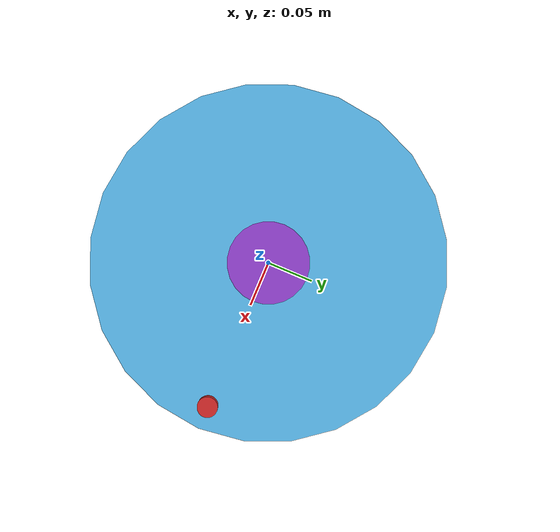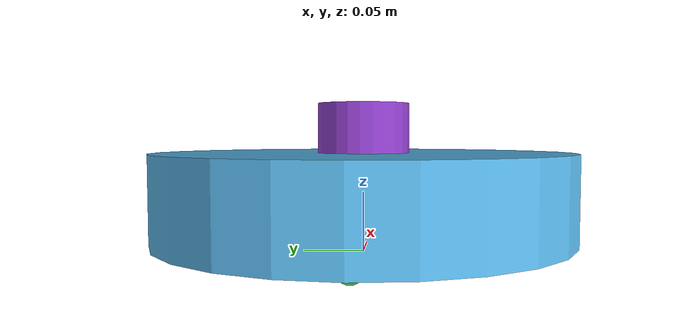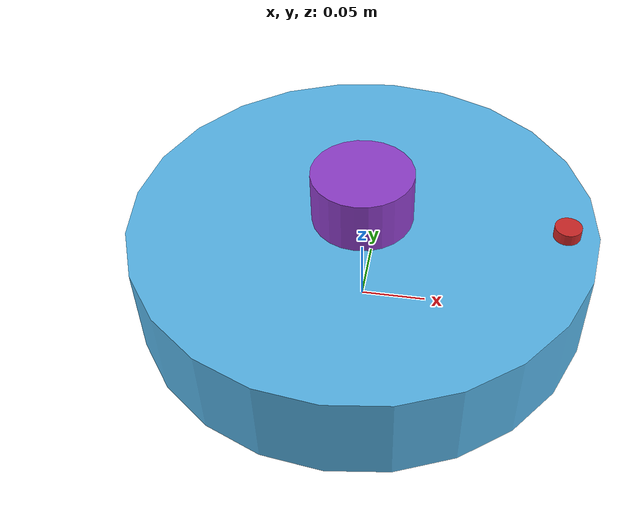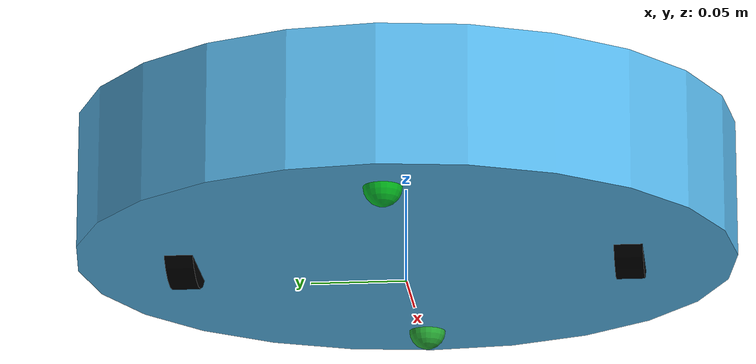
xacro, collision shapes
<?xml version="1.0"?>
<!-- iRobot Roomba 650 model -->
<robot name="roomba" xmlns:xacro="http://www.ros.org/wiki/xacro">

<!-- Robot form parameters -->
  <xacro:property name="PI" value="3.141592"/>
  <xacro:property name="wheels_offset" value="0.235"/>
  <xacro:property name="wheels_xgap" value="0.0"/>
  <xacro:property name="wheels_radius" value="0.036"/>
  <xacro:property name="wheels_width" value="0.015"/>
  <xacro:property name="wheels_mass" value="0.7"/>
  <xacro:property name="wheels_effort" value="1"/>
  <xacro:property name="wheels_velocity" value="1"/>
  <xacro:property name="wheels_damping" value="0.1"/>
  <xacro:property name="base_zgap" value="0.01"/>
  <xacro:property name="base_height" value="${0.083-base_zgap}"/>
  <xacro:property name="base_radius" value="0.174"/>
  <xacro:property name="base_mass" value="3.0"/>
  <xacro:property name="roller_radius" value="${base_zgap*1.0}"/>
  <xacro:property name="roller_xgap" value="0.135"/>
  <xacro:property name="ir_height" value="0.009"/>
  <xacro:property name="ir_radius" value="0.01"/>
  <xacro:property name="ir_mass" value="0.01"/>
  <xacro:property name="ir_xgap" value="0.15"/>
  <xacro:property name="lidar_radius" value="0.038"/>
  <xacro:property name="lidar_height" value="0.041"/>
  <xacro:property name="lidar_offset_y" value="0.0"/>
  <xacro:property name="local_costmap_offset_x" value="2.0"/>
  <xacro:property name="local_costmap_offset_y" value="0.0"/>

  <!-- Macro definition for the inertial property of cylinders -->
  <xacro:macro name="cylinder_inertial" params="radius length mass">
    <inertial>
      <origin xyz="0 0 0" rpy="0 0 0"/>
      <mass value="${mass}"/>
      <inertia ixx="${mass*radius*radius/2}" ixy="0.0" ixz="0.0"
               iyy="${mass*radius*radius/4+mass*length*length/12}" iyz="0.0"
               izz="${mass*radius*radius/4+mass*length*length/12}"/>
    </inertial>
  </xacro:macro>

  <!-- Include materials and gazebo extensions for compatibility -->
  <xacro:include filename="$(find robotics)/urdf/create2.gazebo" />
  <xacro:include filename="$(find robotics)/urdf/materials.xacro" />

  <!-- Definition of the main chassis projection at z=0 (for amcl and navigation purposes) -->
  <link name="base_footprint">
    <inertial>
      <origin xyz="0 0 0" rpy="0 0 0"/>
      <mass value="0.01"/>
      <inertia ixx="0.0001" ixy="0.0" ixz="0.0"
               iyy="0.0001" iyz="0.0" izz="0.0001"/>
    </inertial>
    <visual>
      <origin xyz="0 0 0" rpy="0 0 0"/>
      <!-- Import mesh for robot -->
      <geometry>
        <mesh filename="package://robotics/meshes/base_create2.dae" />
      </geometry>
    </visual>
    <collision>
      <origin xyz="0 0 0.05" rpy="0 0 0"/>
      <geometry>
        <box size="0.001 0.001 0.001" />
      </geometry>
    </collision>
  </link>

  <joint name="base_footprint_joint" type="fixed">
    <origin xyz="0 0 ${(base_height/2+base_zgap)}" rpy="0 0 0"/>
    <parent link="base_footprint"/>
    <child link="base_link"/>
  </joint>

  <!-- Definition of the main (base) link of the robot -->
  <link name="base_link">
    <xacro:cylinder_inertial
      radius="${base_radius}" length="${base_height}" mass="${base_mass}"/>
    <collision>
      <origin xyz="0 0 0" rpy="0 0 0"/>
      <geometry>
        <cylinder radius="${base_radius}" length="${base_height}"/>
      </geometry>
    </collision>
  </link>

  <!-- Lidar joint -->
  <joint name="lidar_joint" type="fixed">
    <origin xyz="0 ${lidar_offset_y} ${base_height/2+lidar_height/2}"
            rpy="0 0 0"/>
    <parent link="base_link"/>
    <child link="lidar"/>
  </joint>

  <!-- Lidar link -->
  <link name="lidar">
    <inertial>
      <origin xyz="0 0 0" rpy="0 0 0"/>
      <mass value="0.01"/>
      <inertia ixx="0.0001" ixy="0.0" ixz="0.0"
               iyy="0.0001" iyz="0.0" izz="0.0001"/>
    </inertial>
    <visual>
      <origin xyz="0 0 ${-lidar_height/2}" rpy="0 0 0"/>
      <geometry>
        <!-- Import lidar mesh -->
        <mesh filename="package://robotics/meshes/rplidar_a3m1.dae" />
      </geometry>
      <material name="purple"/>
    </visual>
    <collision>
      <origin xyz="0 0 0" rpy="0 0 0"/>
      <geometry>
        <cylinder radius="${lidar_radius}" length="${lidar_height}"/>
      </geometry>
    </collision>
  </link>

  <!-- Front roller link -->
  <joint name="roller_joint" type="fixed">
    <origin xyz="${roller_xgap} 0 ${-base_height/2}" rpy="0 0 0"/>
    <parent link="base_link"/>
    <child link="roller"/>
  </joint>

  <link name="roller">
    <inertial>
      <origin xyz="0 0 0" rpy="0 0 0"/>
      <mass value="0.05"/>
      <inertia ixx="0.0001" ixy="0.0" ixz="0.0"
               iyy="0.0001" iyz="0.0" izz="0.0001"/>
    </inertial>
    <collision>
      <origin xyz="0 0 0" rpy="0 0 0"/>
      <geometry>
        <sphere radius="${roller_radius}"/>
      </geometry>
    </collision>
  </link>

  <joint name="roller_joint_back" type="fixed">
    <origin xyz="${-roller_xgap} 0 ${-base_height/2}" rpy="0 0 0"/>
    <parent link="base_link"/>
    <child link="roller_back"/>
  </joint>

  <link name="roller_back">
    <inertial>
      <origin xyz="0 0 0" rpy="0 0 0"/>
      <mass value="0.05"/>
      <inertia ixx="0.0001" ixy="0.0" ixz="0.0"
               iyy="0.0001" iyz="0.0" izz="0.0001"/>
    </inertial>
    <visual>
      <origin xyz="0 0 0" rpy="0 0 0"/>
      <geometry>
        <sphere radius="${roller_radius}"/>
      </geometry>
      <material name="green_transparent"/>
    </visual>
    <collision>
      <origin xyz="0 0 0" rpy="0 0 0"/>
      <geometry>
        <sphere radius="${roller_radius}"/>
      </geometry>
    </collision>
  </link>

  <joint name="ir_joint" type="fixed">
    <origin xyz="${ir_xgap} 0 ${base_height/2+ir_height/2}" rpy="0 0 0"/>
    <parent link="base_link"/>
    <child link="ir"/>
  </joint>

  <link name="ir">
    <inertial>
      <origin xyz="0 0 0" rpy="0 0 0"/>
      <mass value="${ir_mass}"/>
      <inertia ixx="0.0001" ixy="0.0" ixz="0.0"
               iyy="0.0001" iyz="0.0" izz="0.0001"/>
    </inertial>
    <collision>
      <origin xyz="0 0 0" rpy="0 0 0"/>
      <geometry>
        <cylinder radius="${ir_radius}" length="${ir_height}"/>
      </geometry>
    </collision>
  </link>

  <!-- Right wheel -->
  <link name="right_wheel">
    <inertial>
      <origin xyz="0 0 0" rpy="0 0 0"/>
      <mass value="${wheels_mass}"/>
      <inertia ixx="0.001" ixy="0.0" ixz="0.0"
               iyy="0.001" iyz="0.0" izz="0.001"/>
    </inertial>
    <visual>
      <origin xyz="0 0 0" rpy="0 0 0"/>
      <geometry>
        <cylinder radius="${wheels_radius}" length="${wheels_width}"/>
      </geometry>
      <material name="black"/>
    </visual>
    <collision>
      <origin xyz="0 0 0" rpy="0 0 0"/>
      <geometry>
        <cylinder radius="${wheels_radius}" length="${wheels_width}"/>
      </geometry>
    </collision>
  </link>

  <joint name="right_wheel_joint" type="continuous">
    <origin xyz="${-wheels_xgap} ${-wheels_offset/2} ${-base_zgap-base_height/2+wheels_radius}" rpy="${-PI/2} 0 0"/>
    <axis xyz="0 0 1"/>
    <parent link="base_link"/>
    <child link="right_wheel"/>
    <dynamics damping="${wheels_damping}"/>
  </joint>

  <!-- Left wheel -->
  <link name="left_wheel">
    <inertial>
      <origin xyz="0 0 0" rpy="0 0 0"/>
      <mass value="0.25"/>
      <inertia ixx="0.001" ixy="0.0" ixz="0.0"
               iyy="0.001" iyz="0.0" izz="0.001"/>
    </inertial>
    <visual>
      <origin xyz="0 0 0" rpy="0 0 0"/>
      <geometry>
        <cylinder radius="${wheels_radius}" length="${wheels_width}"/>
      </geometry>
      <material name="black"/>
    </visual>
    <collision>
      <origin xyz="0 0 0" rpy="0 0 0"/>
      <geometry>
        <cylinder radius="${wheels_radius}" length="${wheels_width}"/>
      </geometry>
    </collision>
  </link>

  <joint name="left_wheel_joint" type="continuous">
    <origin xyz="${-wheels_xgap} ${wheels_offset/2} ${-base_zgap-base_height/2+wheels_radius}" rpy="${-PI/2} 0 0"/>
    <axis xyz="0 0 1"/>
    <parent link="base_link"/>
    <child link="left_wheel"/>
    <dynamics damping="${wheels_damping}"/>
  </joint>

</robot>

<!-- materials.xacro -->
<robot>

  <!-- Colors definitions -->

  <material name="black">
    <color rgba="0.0 0.0 0.0 1.0"/>
  </material>

  <material name="blue">
    <color rgba="0.0 0.0 0.8 1.0"/>
  </material>

  <material name="green">
    <color rgba="0.0 0.8 0.0 1.0"/>
  </material>

  <material name="green_transparent">
    <color rgba="0.0 0.8 0.0 0.75"/>
  </material>

  <material name="grey">
    <color rgba="0.2 0.2 0.2 1.0"/>
  </material>

  <material name="orange">
    <color rgba="${255/255} ${108/255} ${10/255} 1.0"/>
  </material>

  <material name="orange_transparent">
    <color rgba="${255/255} ${108/255} ${10/255} 0.75"/>
  </material>

  <material name="brown">
    <color rgba="${222/255} ${207/255} ${195/255} 1.0"/>
  </material>

  <material name="red">
    <color rgba="0.8 0.0 0.0 1.0"/>
  </material>

  <material name="white">
    <color rgba="1.0 1.0 1.0 1.0"/>
  </material>

  <material name="purple">
    <color rgba="${143/255} ${62/255} ${203/255} 1.0"/>
  </material>

</robot>
